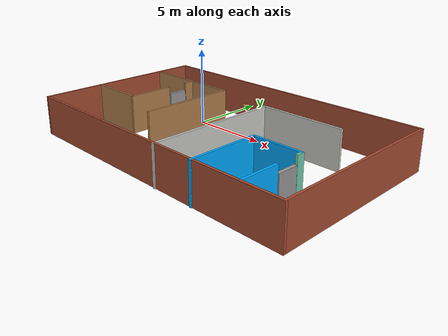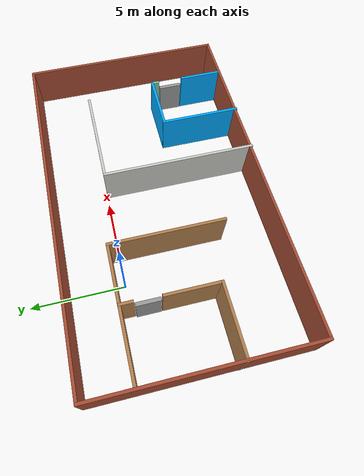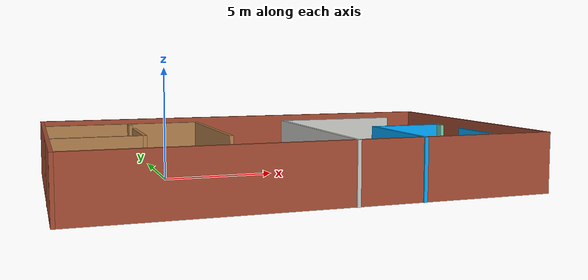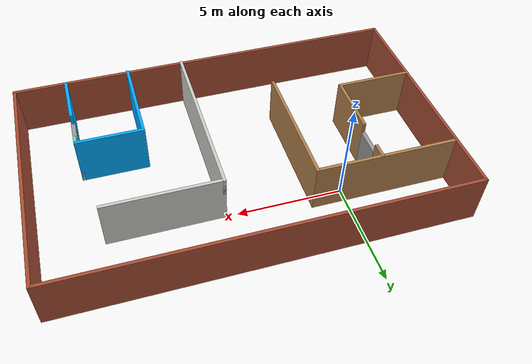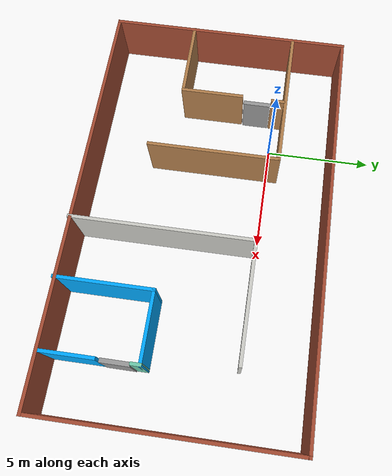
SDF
<?xml version='1.0'?>
<sdf version='1.6'>
  <model name='myhome'>
    <pose frame=''>4.38638 -2.72741 0 0 -0 0</pose>
    <link name='Door_0'>
      <collision name='Door_0_Collision'>
        <geometry>
          <box>
            <size>1.27817 0.2 2</size>
          </box>
        </geometry>
        <pose frame=''>0 0 1 0 -0 0</pose>
      </collision>
      <visual name='Door_0_Visual'>
        <pose frame=''>0 0 1 0 -0 0</pose>
        <geometry>
          <box>
            <size>1.27817 0.2 2</size>
          </box>
        </geometry>
        <material>
          <script>
            <uri>file://media/materials/scripts/gazebo.material</uri>
            <name>Gazebo/Grey</name>
          </script>
        </material>
      </visual>
      <pose frame=''>-5.94324 1.84811 0 0 0 -1.57152</pose>
    </link>
    <link name='Door_1'>
      <collision name='Door_1_Collision'>
        <geometry>
          <box>
            <size>1.3153 0.2 2</size>
          </box>
        </geometry>
        <pose frame=''>0 0 1 0 -0 0</pose>
      </collision>
      <visual name='Door_1_Visual'>
        <pose frame=''>0 0 1 0 -0 0</pose>
        <geometry>
          <box>
            <size>1.3153 0.2 2</size>
          </box>
        </geometry>
        <material>
          <script>
            <uri>file://media/materials/scripts/gazebo.material</uri>
            <name>Gazebo/Grey</name>
          </script>
        </material>
      </visual>
      <pose frame=''>7.08122 -2.48842 0 0 0 -1.57552</pose>
    </link>
    <link name='Wall_10'>
      <collision name='Wall_10_Collision'>
        <geometry>
          <box>
            <size>6.75 0.15 2.5</size>
          </box>
        </geometry>
        <pose frame=''>0 0 1.25 0 -0 0</pose>
      </collision>
      <visual name='Wall_10_Visual'>
        <pose frame=''>0 0 1.25 0 -0 0</pose>
        <geometry>
          <box>
            <size>6.75 0.15 2.5</size>
          </box>
        </geometry>
        <material>
          <script>
            <uri>file://media/materials/scripts/gazebo.material</uri>
            <name>Gazebo/Wood</name>
          </script>
          <ambient>0.996078 0.47451 0.0196078 1</ambient>
        </material>
      </visual>
      <pose frame=''>-6.1354 3.21487 0 0 -0 0</pose>
    </link>
    <link name='Wall_11'>
      <collision name='Wall_11_Collision'>
        <geometry>
          <box>
            <size>6.25 0.15 2.5</size>
          </box>
        </geometry>
        <pose frame=''>0 0 1.25 0 -0 0</pose>
      </collision>
      <visual name='Wall_11_Visual'>
        <pose frame=''>0 0 1.25 0 -0 0</pose>
        <geometry>
          <box>
            <size>6.25 0.15 2.5</size>
          </box>
        </geometry>
        <material>
          <script>
            <uri>file://media/materials/scripts/gazebo.material</uri>
            <name>Gazebo/Wood</name>
          </script>
          <ambient>0.996078 0.47451 0.0196078 1</ambient>
        </material>
      </visual>
      <pose frame=''>-2.8354 0.164866 0 0 0 -1.5708</pose>
    </link>
    <link name='Wall_13'>
      <collision name='Wall_13_Collision'>
        <geometry>
          <box>
            <size>8.5 0.15 2.5</size>
          </box>
        </geometry>
        <pose frame=''>0 0 1.25 0 -0 0</pose>
      </collision>
      <visual name='Wall_13_Visual'>
        <pose frame=''>0 0 1.25 0 -0 0</pose>
        <geometry>
          <box>
            <size>8.5 0.15 2.5</size>
          </box>
        </geometry>
        <material>
          <script>
            <uri>file://media/materials/scripts/gazebo.material</uri>
            <name>Gazebo/CeilingTiled</name>
          </script>
          <ambient>0.435294 0.796078 0.67451 1</ambient>
        </material>
      </visual>
      <pose frame=''>1.2112 -1.5324 0 0 -0 1.5708</pose>
    </link>
    <link name='Wall_14'>
      <collision name='Wall_14_Collision'>
        <geometry>
          <box>
            <size>5.5 0.15 2.5</size>
          </box>
        </geometry>
        <pose frame=''>0 0 1.25 0 -0 0</pose>
      </collision>
      <visual name='Wall_14_Visual'>
        <pose frame=''>0 0 1.25 0 -0 0</pose>
        <geometry>
          <box>
            <size>5.5 0.15 2.5</size>
          </box>
        </geometry>
        <material>
          <script>
            <uri>file://media/materials/scripts/gazebo.material</uri>
            <name>Gazebo/CeilingTiled</name>
          </script>
          <ambient>0.435294 0.796078 0.67451 1</ambient>
        </material>
      </visual>
      <pose frame=''>3.8862 2.6426 0 0 -0 0</pose>
    </link>
    <link name='Wall_16'>
      <collision name='Wall_16_Collision'>
        <geometry>
          <box>
            <size>4.5 0.15 2.5</size>
          </box>
        </geometry>
        <pose frame=''>0 0 1.25 0 -0 0</pose>
      </collision>
      <visual name='Wall_16_Visual'>
        <pose frame=''>0 0 1.25 0 -0 0</pose>
        <geometry>
          <box>
            <size>4.5 0.15 2.5</size>
          </box>
        </geometry>
        <material>
          <script>
            <uri>file://media/materials/scripts/gazebo.material</uri>
            <name>Gazebo/Grey</name>
          </script>
          <ambient>0 0.666667 1 1</ambient>
        </material>
      </visual>
      <pose frame=''>3.97995 -3.5324 0 0 -0 1.5708</pose>
    </link>
    <link name='Wall_17'>
      <collision name='Wall_17_Collision'>
        <geometry>
          <box>
            <size>3.25 0.15 2.5</size>
          </box>
        </geometry>
        <pose frame=''>0 0 1.25 0 -0 0</pose>
      </collision>
      <visual name='Wall_17_Visual'>
        <pose frame=''>0 0 1.25 0 -0 0</pose>
        <geometry>
          <box>
            <size>3.25 0.15 2.5</size>
          </box>
        </geometry>
        <material>
          <script>
            <uri>file://media/materials/scripts/gazebo.material</uri>
            <name>Gazebo/Grey</name>
          </script>
          <ambient>0 0.666667 1 1</ambient>
        </material>
      </visual>
      <pose frame=''>5.52996 -1.3574 0 0 -0 0</pose>
    </link>
    <link name='Wall_19'>
      <collision name='Wall_19_Collision'>
        <geometry>
          <box>
            <size>3.75 0.15 2.5</size>
          </box>
        </geometry>
        <pose frame=''>0 0 1.25 0 -0 0</pose>
      </collision>
      <visual name='Wall_19_Visual'>
        <pose frame=''>0 0 1.25 0 -0 0</pose>
        <geometry>
          <box>
            <size>3.75 0.15 2.5</size>
          </box>
        </geometry>
        <material>
          <script>
            <uri>file://media/materials/scripts/gazebo.material</uri>
            <name>Gazebo/Wood</name>
          </script>
          <ambient>1 1 1 1</ambient>
        </material>
      </visual>
      <pose frame=''>-7.75618 -1.76961 0 0 -0 0</pose>
    </link>
    <link name='Wall_20'>
      <collision name='Wall_20_Collision'>
        <geometry>
          <box>
            <size>3 0.15 2.5</size>
          </box>
        </geometry>
        <pose frame=''>0 0 1.25 0 -0 0</pose>
      </collision>
      <visual name='Wall_20_Visual'>
        <pose frame=''>0 0 1.25 0 -0 0</pose>
        <geometry>
          <box>
            <size>3 0.15 2.5</size>
          </box>
        </geometry>
        <material>
          <script>
            <uri>file://media/materials/scripts/gazebo.material</uri>
            <name>Gazebo/Wood</name>
          </script>
          <ambient>1 1 1 1</ambient>
        </material>
      </visual>
      <pose frame=''>-5.95618 -0.344612 0 0 -0 1.5708</pose>
    </link>
    <link name='Wall_22'>
      <collision name='Wall_22_Collision'>
        <geometry>
          <box>
            <size>0.75 0.15 2.5</size>
          </box>
        </geometry>
        <pose frame=''>0 0 1.25 0 -0 0</pose>
      </collision>
      <visual name='Wall_22_Visual'>
        <pose frame=''>0 0 1.25 0 -0 0</pose>
        <geometry>
          <box>
            <size>0.75 0.15 2.5</size>
          </box>
        </geometry>
        <material>
          <script>
            <uri>file://media/materials/scripts/gazebo.material</uri>
            <name>Gazebo/Wood</name>
          </script>
          <ambient>1 1 1 1</ambient>
        </material>
      </visual>
      <pose frame=''>-5.90629 2.89225 0 0 0 -1.5708</pose>
    </link>
    <link name='Wall_24'>
      <collision name='Wall_24_Collision'>
        <geometry>
          <box>
            <size>0.5 0.15 2.5</size>
          </box>
        </geometry>
        <pose frame=''>0 0 1.25 0 -0 0</pose>
      </collision>
      <visual name='Wall_24_Visual'>
        <pose frame=''>0 0 1.25 0 -0 0</pose>
        <geometry>
          <box>
            <size>0.5 0.15 2.5</size>
          </box>
        </geometry>
        <material>
          <script>
            <uri>file://media/materials/scripts/gazebo.material</uri>
            <name>Gazebo/Grey</name>
          </script>
          <ambient>0.435294 0.796078 0.67451 1</ambient>
        </material>
      </visual>
      <pose frame=''>7.07996 -1.5324 0 0 0 -1.5708</pose>
    </link>
    <link name='Wall_26'>
      <collision name='Wall_26_Collision'>
        <geometry>
          <box>
            <size>2.5 0.15 2.5</size>
          </box>
        </geometry>
        <pose frame=''>0 0 1.25 0 -0 0</pose>
      </collision>
      <visual name='Wall_26_Visual'>
        <pose frame=''>0 0 1.25 0 -0 0</pose>
        <geometry>
          <box>
            <size>2.5 0.15 2.5</size>
          </box>
        </geometry>
        <material>
          <script>
            <uri>file://media/materials/scripts/gazebo.material</uri>
            <name>Gazebo/Grey</name>
          </script>
          <ambient>0 0.666667 1 1</ambient>
        </material>
      </visual>
      <pose frame=''>7.07861 -4.44031 0 0 0 -1.5708</pose>
    </link>
    <link name='Wall_3'>
      <collision name='Wall_3_Collision'>
        <geometry>
          <box>
            <size>11.5 0.15 2.5</size>
          </box>
        </geometry>
        <pose frame=''>0 0 1.25 0 -0 0</pose>
      </collision>
      <visual name='Wall_3_Visual'>
        <pose frame=''>0 0 1.25 0 -0 0</pose>
        <geometry>
          <box>
            <size>11.5 0.15 2.5</size>
          </box>
        </geometry>
        <material>
          <script>
            <uri>file://media/materials/scripts/gazebo.material</uri>
            <name>Gazebo/Bricks</name>
          </script>
          <ambient>1 1 1 1</ambient>
        </material>
      </visual>
      <pose frame=''>-9.54382 0.032397 0 0 -0 1.5708</pose>
    </link>
    <link name='Wall_6'>
      <collision name='Wall_6_Collision'>
        <geometry>
          <box>
            <size>19.25 0.15 2.5</size>
          </box>
        </geometry>
        <pose frame=''>0 0 1.25 0 -0 0</pose>
      </collision>
      <visual name='Wall_6_Visual'>
        <pose frame=''>0 0 1.25 0 -0 0</pose>
        <geometry>
          <box>
            <size>19.25 0.15 2.5</size>
          </box>
        </geometry>
        <material>
          <script>
            <uri>file://media/materials/scripts/gazebo.material</uri>
            <name>Gazebo/Bricks</name>
          </script>
          <ambient>1 1 1 1</ambient>
        </material>
      </visual>
      <pose frame=''>0.006176 5.7074 0 0 -0 0</pose>
    </link>
    <link name='Wall_7'>
      <collision name='Wall_7_Collision'>
        <geometry>
          <box>
            <size>11.5 0.15 2.5</size>
          </box>
        </geometry>
        <pose frame=''>0 0 1.25 0 -0 0</pose>
      </collision>
      <visual name='Wall_7_Visual'>
        <pose frame=''>0 0 1.25 0 -0 0</pose>
        <geometry>
          <box>
            <size>11.5 0.15 2.5</size>
          </box>
        </geometry>
        <material>
          <script>
            <uri>file://media/materials/scripts/gazebo.material</uri>
            <name>Gazebo/Bricks</name>
          </script>
          <ambient>1 1 1 1</ambient>
        </material>
      </visual>
      <pose frame=''>9.55618 0.032397 0 0 0 -1.5708</pose>
    </link>
    <link name='Wall_8'>
      <collision name='Wall_8_Collision'>
        <geometry>
          <box>
            <size>19.25 0.15 2.5</size>
          </box>
        </geometry>
        <pose frame=''>0 0 1.25 0 -0 0</pose>
      </collision>
      <visual name='Wall_8_Visual'>
        <pose frame=''>0 0 1.25 0 -0 0</pose>
        <geometry>
          <box>
            <size>19.25 0.15 2.5</size>
          </box>
        </geometry>
        <material>
          <script>
            <uri>file://media/materials/scripts/gazebo.material</uri>
            <name>Gazebo/Bricks</name>
          </script>
          <ambient>1 1 1 1</ambient>
        </material>
      </visual>
      <pose frame=''>0.006176 -5.6426 0 0 -0 3.14159</pose>
    </link>
    <static>1</static>
  </model>
</sdf>
